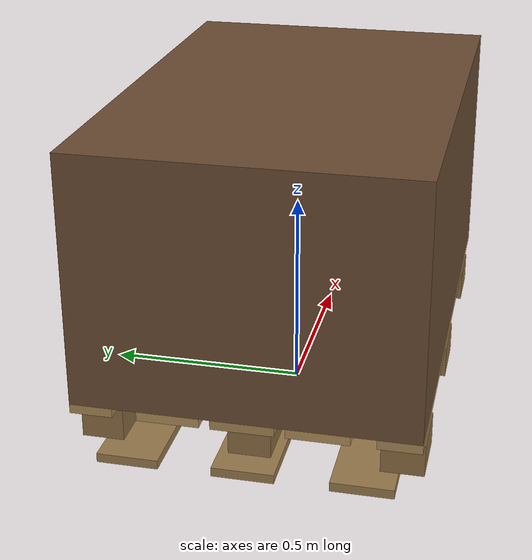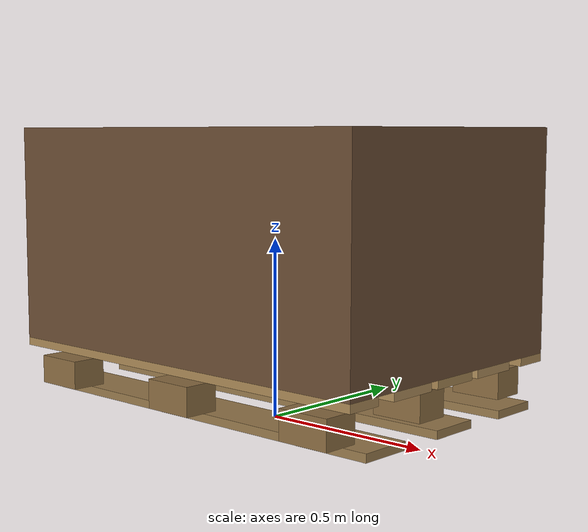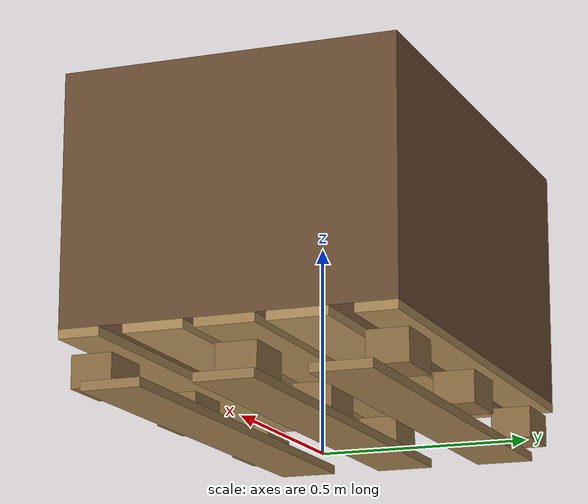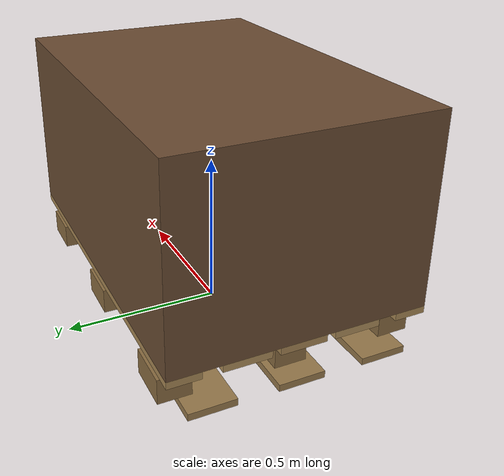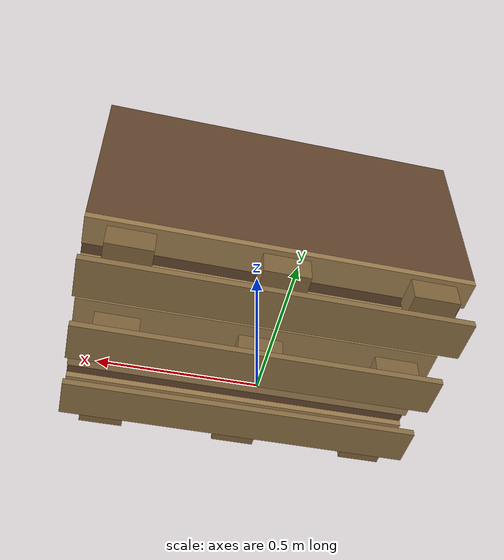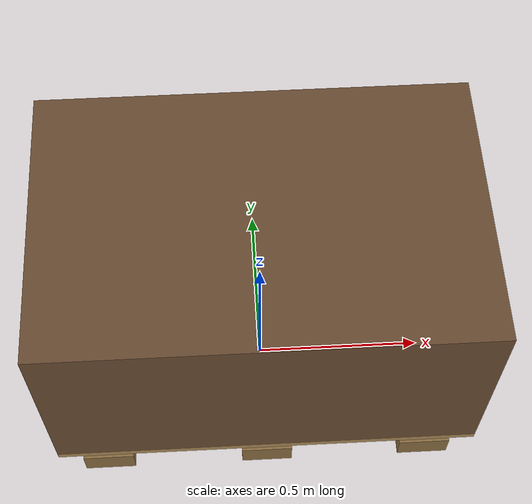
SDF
<?xml version="1.0"?>
<sdf version="1.9">
  <model name="euro_pallet">
    <pose>0 0 0 0 0 0</pose>
    <static>false</static>
    <self_collide>false</self_collide>
    <allow_auto_disable>false</allow_auto_disable>

    <link name="pallet_link">
      <pose>0 0 0.06 0 0 0</pose>
      <inertial>
        <pose>0 0 0.072 0 0 0</pose>
        <mass>25.0</mass>
        <inertia>
          <ixx>1.38</ixx>
          <iyy>3.04</iyy>
          <izz>4.33</izz>
          <ixy>0.0</ixy>
          <ixz>0.0</ixz>
          <iyz>0.0</iyz>
        </inertia>
      </inertial>

      <collision name="top_board_outer_left_collision">
        <pose>0 -0.35 0.133 0 0 0</pose>
        <geometry>
          <box>
            <size>1.2 0.10 0.022</size>
          </box>
        </geometry>
      </collision>
      <collision name="top_board_inner_left_collision">
        <pose>0 -0.17 0.133 0 0 0</pose>
        <geometry>
          <box>
            <size>1.2 0.145 0.022</size>
          </box>
        </geometry>
      </collision>
      <collision name="top_board_center_collision">
        <pose>0 0 0.133 0 0 0</pose>
        <geometry>
          <box>
            <size>1.2 0.145 0.022</size>
          </box>
        </geometry>
      </collision>
      <collision name="top_board_inner_right_collision">
        <pose>0 0.17 0.133 0 0 0</pose>
        <geometry>
          <box>
            <size>1.2 0.145 0.022</size>
          </box>
        </geometry>
      </collision>
      <collision name="top_board_outer_right_collision">
        <pose>0 0.35 0.133 0 0 0</pose>
        <geometry>
          <box>
            <size>1.2 0.10 0.022</size>
          </box>
        </geometry>
      </collision>

      <collision name="bottom_board_left_collision">
        <pose>0 -0.34 0.011 0 0 0</pose>
        <geometry>
          <box>
            <size>1.2 0.10 0.022</size>
          </box>
        </geometry>
        <surface>
          <friction>
            <ode>
              <mu>1.2</mu>
              <mu2>1.2</mu2>
              <slip1>0.0</slip1>
              <slip2>0.0</slip2>
            </ode>
            <bullet>
              <friction>1.2</friction>
              <friction2>1.2</friction2>
            </bullet>
          </friction>
        </surface>
      </collision>
      <collision name="bottom_board_center_collision">
        <pose>0 0 0.011 0 0 0</pose>
        <geometry>
          <box>
            <size>1.2 0.10 0.022</size>
          </box>
        </geometry>
        <surface>
          <friction>
            <ode>
              <mu>1.2</mu>
              <mu2>1.2</mu2>
              <slip1>0.0</slip1>
              <slip2>0.0</slip2>
            </ode>
            <bullet>
              <friction>1.2</friction>
              <friction2>1.2</friction2>
            </bullet>
          </friction>
        </surface>
      </collision>
      <collision name="bottom_board_right_collision">
        <pose>0 0.34 0.011 0 0 0</pose>
        <geometry>
          <box>
            <size>1.2 0.10 0.022</size>
          </box>
        </geometry>
        <surface>
          <friction>
            <ode>
              <mu>1.2</mu>
              <mu2>1.2</mu2>
              <slip1>0.0</slip1>
              <slip2>0.0</slip2>
            </ode>
            <bullet>
              <friction>1.2</friction>
              <friction2>1.2</friction2>
            </bullet>
          </friction>
        </surface>
      </collision>

      <collision name="block_1_collision">
        <pose>-0.46 -0.35 0.061 0 0 0</pose>
        <geometry>
          <box>
            <size>0.145 0.10 0.078</size>
          </box>
        </geometry>
      </collision>
      <collision name="block_2_collision">
        <pose>0 -0.35 0.061 0 0 0</pose>
        <geometry>
          <box>
            <size>0.145 0.10 0.078</size>
          </box>
        </geometry>
      </collision>
      <collision name="block_3_collision">
        <pose>0.46 -0.35 0.061 0 0 0</pose>
        <geometry>
          <box>
            <size>0.145 0.10 0.078</size>
          </box>
        </geometry>
      </collision>
      <collision name="block_4_collision">
        <pose>-0.46 0 0.061 0 0 0</pose>
        <geometry>
          <box>
            <size>0.145 0.10 0.078</size>
          </box>
        </geometry>
      </collision>
      <collision name="block_5_collision">
        <pose>0 0 0.061 0 0 0</pose>
        <geometry>
          <box>
            <size>0.145 0.10 0.078</size>
          </box>
        </geometry>
      </collision>
      <collision name="block_6_collision">
        <pose>0.46 0 0.061 0 0 0</pose>
        <geometry>
          <box>
            <size>0.145 0.10 0.078</size>
          </box>
        </geometry>
      </collision>
      <collision name="block_7_collision">
        <pose>-0.46 0.35 0.061 0 0 0</pose>
        <geometry>
          <box>
            <size>0.145 0.10 0.078</size>
          </box>
        </geometry>
      </collision>
      <collision name="block_8_collision">
        <pose>0 0.35 0.061 0 0 0</pose>
        <geometry>
          <box>
            <size>0.145 0.10 0.078</size>
          </box>
        </geometry>
      </collision>
      <collision name="block_9_collision">
        <pose>0.46 0.35 0.061 0 0 0</pose>
        <geometry>
          <box>
            <size>0.145 0.10 0.078</size>
          </box>
        </geometry>
      </collision>
      <collision name="marker_box_collision">
        <pose>0 0 0.444 0 0 0</pose>
        <geometry>
          <box>
            <size>1.2 0.8 0.60</size>
          </box>
        </geometry>
      </collision>

      <visual name="top_board_outer_left">
        <pose>0 -0.35 0.133 0 0 0</pose>
        <geometry>
          <box>
            <size>1.2 0.10 0.022</size>
          </box>
        </geometry>
        <material>
          <ambient>0.67 0.54 0.34 1.0</ambient>
          <diffuse>0.67 0.54 0.34 1.0</diffuse>
        </material>
      </visual>
      <visual name="top_board_inner_left">
        <pose>0 -0.17 0.133 0 0 0</pose>
        <geometry>
          <box>
            <size>1.2 0.145 0.022</size>
          </box>
        </geometry>
        <material>
          <ambient>0.69 0.56 0.36 1.0</ambient>
          <diffuse>0.69 0.56 0.36 1.0</diffuse>
        </material>
      </visual>
      <visual name="top_board_center">
        <pose>0 0 0.133 0 0 0</pose>
        <geometry>
          <box>
            <size>1.2 0.145 0.022</size>
          </box>
        </geometry>
        <material>
          <ambient>0.66 0.53 0.33 1.0</ambient>
          <diffuse>0.66 0.53 0.33 1.0</diffuse>
        </material>
      </visual>
      <visual name="top_board_inner_right">
        <pose>0 0.17 0.133 0 0 0</pose>
        <geometry>
          <box>
            <size>1.2 0.145 0.022</size>
          </box>
        </geometry>
        <material>
          <ambient>0.69 0.56 0.36 1.0</ambient>
          <diffuse>0.69 0.56 0.36 1.0</diffuse>
        </material>
      </visual>
      <visual name="top_board_outer_right">
        <pose>0 0.35 0.133 0 0 0</pose>
        <geometry>
          <box>
            <size>1.2 0.10 0.022</size>
          </box>
        </geometry>
        <material>
          <ambient>0.67 0.54 0.34 1.0</ambient>
          <diffuse>0.67 0.54 0.34 1.0</diffuse>
        </material>
      </visual>

      <visual name="bottom_board_left">
        <pose>0 -0.27 0.011 0 0 0</pose>
        <geometry>
          <box>
            <size>1.2 0.145 0.022</size>
          </box>
        </geometry>
        <material>
          <ambient>0.60 0.48 0.30 1.0</ambient>
          <diffuse>0.60 0.48 0.30 1.0</diffuse>
        </material>
      </visual>
      <visual name="bottom_board_center">
        <pose>0 0 0.011 0 0 0</pose>
        <geometry>
          <box>
            <size>1.2 0.145 0.022</size>
          </box>
        </geometry>
        <material>
          <ambient>0.60 0.48 0.30 1.0</ambient>
          <diffuse>0.60 0.48 0.30 1.0</diffuse>
        </material>
      </visual>
      <visual name="bottom_board_right">
        <pose>0 0.27 0.011 0 0 0</pose>
        <geometry>
          <box>
            <size>1.2 0.145 0.022</size>
          </box>
        </geometry>
        <material>
          <ambient>0.60 0.48 0.30 1.0</ambient>
          <diffuse>0.60 0.48 0.30 1.0</diffuse>
        </material>
      </visual>

      <visual name="block_1">
        <pose>-0.46 -0.35 0.061 0 0 0</pose>
        <geometry>
          <box>
            <size>0.145 0.10 0.078</size>
          </box>
        </geometry>
        <material>
          <ambient>0.55 0.43 0.26 1.0</ambient>
          <diffuse>0.55 0.43 0.26 1.0</diffuse>
        </material>
      </visual>
      <visual name="block_2">
        <pose>0 -0.35 0.061 0 0 0</pose>
        <geometry>
          <box>
            <size>0.145 0.10 0.078</size>
          </box>
        </geometry>
        <material>
          <ambient>0.55 0.43 0.26 1.0</ambient>
          <diffuse>0.55 0.43 0.26 1.0</diffuse>
        </material>
      </visual>
      <visual name="block_3">
        <pose>0.46 -0.35 0.061 0 0 0</pose>
        <geometry>
          <box>
            <size>0.145 0.10 0.078</size>
          </box>
        </geometry>
        <material>
          <ambient>0.55 0.43 0.26 1.0</ambient>
          <diffuse>0.55 0.43 0.26 1.0</diffuse>
        </material>
      </visual>
      <visual name="block_4">
        <pose>-0.46 0 0.061 0 0 0</pose>
        <geometry>
          <box>
            <size>0.145 0.10 0.078</size>
          </box>
        </geometry>
        <material>
          <ambient>0.55 0.43 0.26 1.0</ambient>
          <diffuse>0.55 0.43 0.26 1.0</diffuse>
        </material>
      </visual>
      <visual name="block_5">
        <pose>0 0 0.061 0 0 0</pose>
        <geometry>
          <box>
            <size>0.145 0.10 0.078</size>
          </box>
        </geometry>
        <material>
          <ambient>0.55 0.43 0.26 1.0</ambient>
          <diffuse>0.55 0.43 0.26 1.0</diffuse>
        </material>
      </visual>
      <visual name="block_6">
        <pose>0.46 0 0.061 0 0 0</pose>
        <geometry>
          <box>
            <size>0.145 0.10 0.078</size>
          </box>
        </geometry>
        <material>
          <ambient>0.55 0.43 0.26 1.0</ambient>
          <diffuse>0.55 0.43 0.26 1.0</diffuse>
        </material>
      </visual>
      <visual name="block_7">
        <pose>-0.46 0.35 0.061 0 0 0</pose>
        <geometry>
          <box>
            <size>0.145 0.10 0.078</size>
          </box>
        </geometry>
        <material>
          <ambient>0.55 0.43 0.26 1.0</ambient>
          <diffuse>0.55 0.43 0.26 1.0</diffuse>
        </material>
      </visual>
      <visual name="block_8">
        <pose>0 0.35 0.061 0 0 0</pose>
        <geometry>
          <box>
            <size>0.145 0.10 0.078</size>
          </box>
        </geometry>
        <material>
          <ambient>0.55 0.43 0.26 1.0</ambient>
          <diffuse>0.55 0.43 0.26 1.0</diffuse>
        </material>
      </visual>
      <visual name="block_9">
        <pose>0.46 0.35 0.061 0 0 0</pose>
        <geometry>
          <box>
            <size>0.145 0.10 0.078</size>
          </box>
        </geometry>
        <material>
          <ambient>0.55 0.43 0.26 1.0</ambient>
          <diffuse>0.55 0.43 0.26 1.0</diffuse>
        </material>
      </visual>
      <visual name="marker_box">
        <pose>0 0 0.444 0 0 0</pose>
        <geometry>
          <box>
            <size>1.2 0.8 0.60</size>
          </box>
        </geometry>
        <material>
          <ambient>0.35 0.24 0.16 1.0</ambient>
          <diffuse>0.42 0.30 0.20 1.0</diffuse>
          <specular>0.04 0.035 0.03 1.0</specular>
        </material>
      </visual>
    </link>
  </model>
</sdf>
